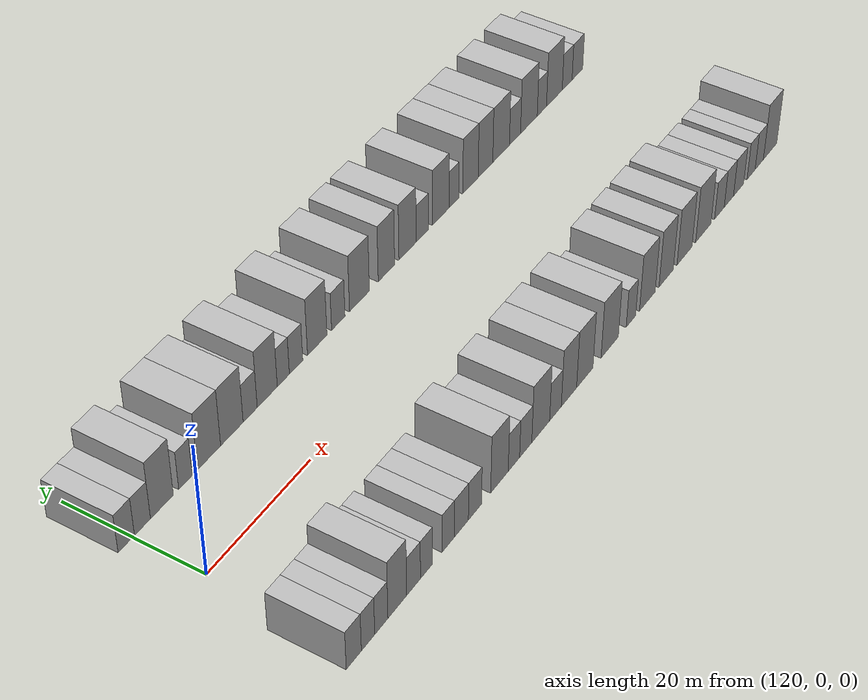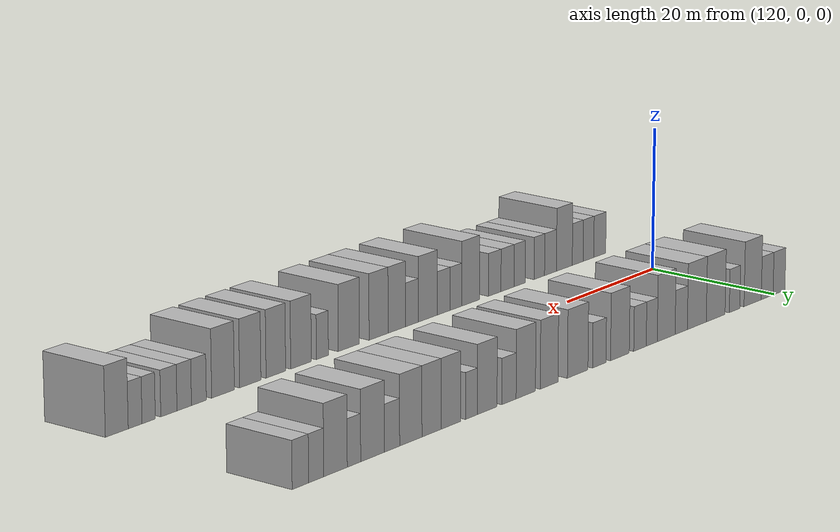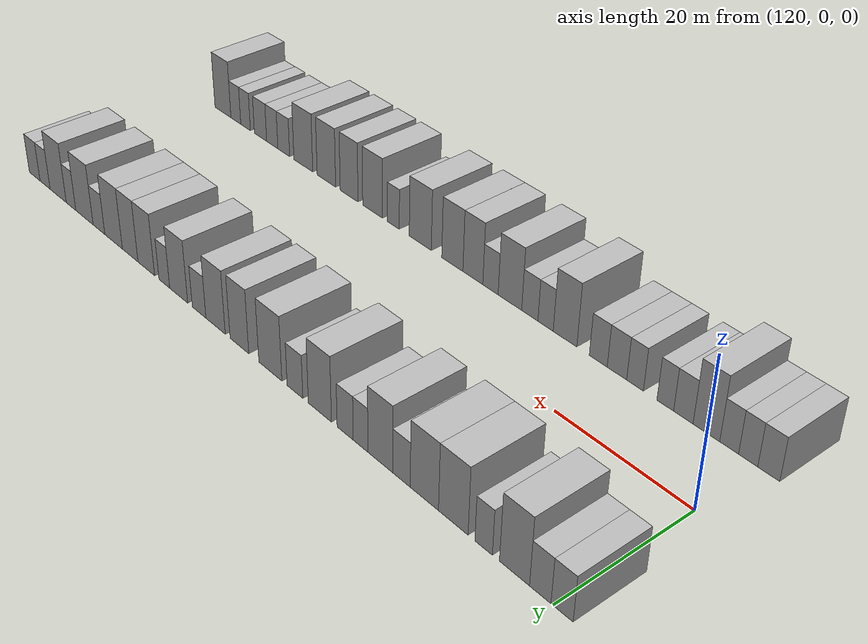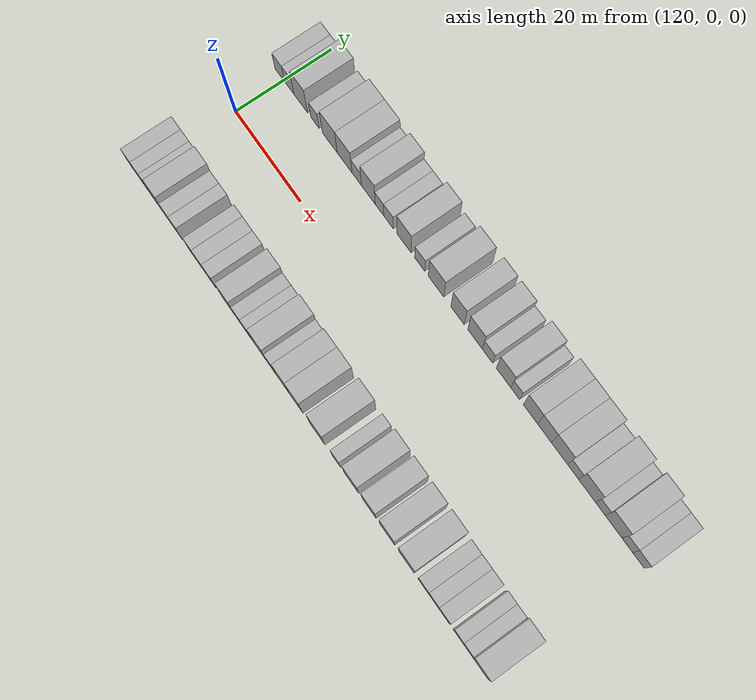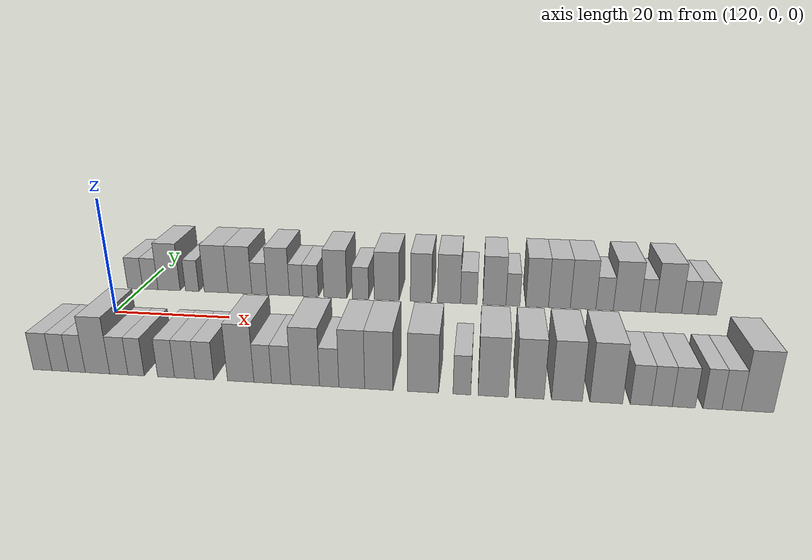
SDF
<sdf version="1.6">
 <world name="default">
  <model name="building_30">
   <static>1</static>
   <pose>118.8395 15.0000 0 0.000000 0.000000 1.570796</pose>
   <link name="link">
    <pose>0 0 3.00 0 0 0</pose>
    <collision name="collision"><geometry><box><size>10.0000 2.9260 6.0000</size></box></geometry></collision>
    <visual name="visual">
     <cast_shadows>0</cast_shadows>
     <geometry><box><size>10.0000 2.9260 6.0000</size></box></geometry>
     <material>
      <script>
       <uri>model://HANNAS_wall/materials/scripts</uri>
       <uri>model://HANNAS_wall/materials/textures</uri>
       <name>vrc/HANNAS_wall</name>
      </script>
     </material>
    </visual>
   </link>
  </model>
  <model name="building_31">
   <static>1</static>
   <pose>121.7471 15.0000 0 0.000000 0.000000 1.570796</pose>
   <link name="link">
    <pose>0 0 3.00 0 0 0</pose>
    <collision name="collision"><geometry><box><size>10.0000 2.8892 6.0000</size></box></geometry></collision>
    <visual name="visual">
     <cast_shadows>0</cast_shadows>
     <geometry><box><size>10.0000 2.8892 6.0000</size></box></geometry>
     <material>
      <script>
       <uri>model://HANNAS_wall/materials/scripts</uri>
       <uri>model://HANNAS_wall/materials/textures</uri>
       <name>vrc/HANNAS_wall</name>
      </script>
     </material>
    </visual>
   </link>
  </model>
  <model name="building_32">
   <static>1</static>
   <pose>125.2870 15.0000 0 0.000000 0.000000 1.570796</pose>
   <link name="link">
    <pose>0 0 4.50 0 0 0</pose>
    <collision name="collision"><geometry><box><size>10.0000 4.1906 9.0000</size></box></geometry></collision>
    <visual name="visual">
     <cast_shadows>0</cast_shadows>
     <geometry><box><size>10.0000 4.1906 9.0000</size></box></geometry>
     <material>
      <script>
       <uri>model://HANNAS_wall/materials/scripts</uri>
       <uri>model://HANNAS_wall/materials/textures</uri>
       <name>vrc/HANNAS_wall</name>
      </script>
     </material>
    </visual>
   </link>
  </model>
  <model name="building_33">
   <static>1</static>
   <pose>129.6487 15.0000 0 0.000000 0.000000 1.570796</pose>
   <link name="link">
    <pose>0 0 3.00 0 0 0</pose>
    <collision name="collision"><geometry><box><size>10.0000 2.5326 6.0000</size></box></geometry></collision>
    <visual name="visual">
     <cast_shadows>0</cast_shadows>
     <geometry><box><size>10.0000 2.5326 6.0000</size></box></geometry>
     <material>
      <script>
       <uri>model://HANNAS_wall/materials/scripts</uri>
       <uri>model://HANNAS_wall/materials/textures</uri>
       <name>vrc/HANNAS_wall</name>
      </script>
     </material>
    </visual>
   </link>
  </model>
  <model name="building_34">
   <static>1</static>
   <pose>134.1399 15.0000 0 0.000000 0.000000 1.570796</pose>
   <link name="link">
    <pose>0 0 4.50 0 0 0</pose>
    <collision name="collision"><geometry><box><size>10.0000 4.4499 9.0000</size></box></geometry></collision>
    <visual name="visual">
     <cast_shadows>0</cast_shadows>
     <geometry><box><size>10.0000 4.4499 9.0000</size></box></geometry>
     <material>
      <script>
       <uri>model://HANNAS_wall/materials/scripts</uri>
       <uri>model://HANNAS_wall/materials/textures</uri>
       <name>vrc/HANNAS_wall</name>
      </script>
     </material>
    </visual>
   </link>
  </model>
  <model name="building_35">
   <static>1</static>
   <pose>138.5769 15.0000 0 0.000000 0.000000 1.570796</pose>
   <link name="link">
    <pose>0 0 4.50 0 0 0</pose>
    <collision name="collision"><geometry><box><size>10.0000 4.4240 9.0000</size></box></geometry></collision>
    <visual name="visual">
     <cast_shadows>0</cast_shadows>
     <geometry><box><size>10.0000 4.4240 9.0000</size></box></geometry>
     <material>
      <script>
       <uri>model://HANNAS_wall/materials/scripts</uri>
       <uri>model://HANNAS_wall/materials/textures</uri>
       <name>vrc/HANNAS_wall</name>
      </script>
     </material>
    </visual>
   </link>
  </model>
  <model name="building_36">
   <static>1</static>
   <pose>142.1965 15.0000 0 0.000000 0.000000 1.570796</pose>
   <link name="link">
    <pose>0 0 3.00 0 0 0</pose>
    <collision name="collision"><geometry><box><size>10.0000 2.8153 6.0000</size></box></geometry></collision>
    <visual name="visual">
     <cast_shadows>0</cast_shadows>
     <geometry><box><size>10.0000 2.8153 6.0000</size></box></geometry>
     <material>
      <script>
       <uri>model://HANNAS_wall/materials/scripts</uri>
       <uri>model://HANNAS_wall/materials/textures</uri>
       <name>vrc/HANNAS_wall</name>
      </script>
     </material>
    </visual>
   </link>
  </model>
  <model name="building_37">
   <static>1</static>
   <pose>145.6440 15.0000 0 0.000000 0.000000 1.570796</pose>
   <link name="link">
    <pose>0 0 4.50 0 0 0</pose>
    <collision name="collision"><geometry><box><size>10.0000 4.0796 9.0000</size></box></geometry></collision>
    <visual name="visual">
     <cast_shadows>0</cast_shadows>
     <geometry><box><size>10.0000 4.0796 9.0000</size></box></geometry>
     <material>
      <script>
       <uri>model://HANNAS_wall/materials/scripts</uri>
       <uri>model://HANNAS_wall/materials/textures</uri>
       <name>vrc/HANNAS_wall</name>
      </script>
     </material>
    </visual>
   </link>
  </model>
  <model name="building_38">
   <static>1</static>
   <pose>148.9304 15.0000 0 0.000000 0.000000 1.570796</pose>
   <link name="link">
    <pose>0 0 3.00 0 0 0</pose>
    <collision name="collision"><geometry><box><size>10.0000 2.4932 6.0000</size></box></geometry></collision>
    <visual name="visual">
     <cast_shadows>0</cast_shadows>
     <geometry><box><size>10.0000 2.4932 6.0000</size></box></geometry>
     <material>
      <script>
       <uri>model://HANNAS_wall/materials/scripts</uri>
       <uri>model://HANNAS_wall/materials/textures</uri>
       <name>vrc/HANNAS_wall</name>
      </script>
     </material>
    </visual>
   </link>
  </model>
  <model name="building_39">
   <static>1</static>
   <pose>151.5765 15.0000 0 0.000000 0.000000 1.570796</pose>
   <link name="link">
    <pose>0 0 3.00 0 0 0</pose>
    <collision name="collision"><geometry><box><size>10.0000 2.7991 6.0000</size></box></geometry></collision>
    <visual name="visual">
     <cast_shadows>0</cast_shadows>
     <geometry><box><size>10.0000 2.7991 6.0000</size></box></geometry>
     <material>
      <script>
       <uri>model://HANNAS_wall/materials/scripts</uri>
       <uri>model://HANNAS_wall/materials/textures</uri>
       <name>vrc/HANNAS_wall</name>
      </script>
     </material>
    </visual>
   </link>
  </model>
  <model name="building_40">
   <static>1</static>
   <pose>156.0516 15.0000 0 0.000000 0.000000 1.570796</pose>
   <link name="link">
    <pose>0 0 4.50 0 0 0</pose>
    <collision name="collision"><geometry><box><size>10.0000 4.1510 9.0000</size></box></geometry></collision>
    <visual name="visual">
     <cast_shadows>0</cast_shadows>
     <geometry><box><size>10.0000 4.1510 9.0000</size></box></geometry>
     <material>
      <script>
       <uri>model://HANNAS_wall/materials/scripts</uri>
       <uri>model://HANNAS_wall/materials/textures</uri>
       <name>vrc/HANNAS_wall</name>
      </script>
     </material>
    </visual>
   </link>
  </model>
  <model name="building_41">
   <static>1</static>
   <pose>160.5889 15.0000 0 0.000000 0.000000 1.570796</pose>
   <link name="link">
    <pose>0 0 3.00 0 0 0</pose>
    <collision name="collision"><geometry><box><size>10.0000 2.9237 6.0000</size></box></geometry></collision>
    <visual name="visual">
     <cast_shadows>0</cast_shadows>
     <geometry><box><size>10.0000 2.9237 6.0000</size></box></geometry>
     <material>
      <script>
       <uri>model://HANNAS_wall/materials/scripts</uri>
       <uri>model://HANNAS_wall/materials/textures</uri>
       <name>vrc/HANNAS_wall</name>
      </script>
     </material>
    </visual>
   </link>
  </model>
  <model name="building_42">
   <static>1</static>
   <pose>165.2645 15.0000 0 0.000000 0.000000 1.570796</pose>
   <link name="link">
    <pose>0 0 4.50 0 0 0</pose>
    <collision name="collision"><geometry><box><size>10.0000 4.4274 9.0000</size></box></geometry></collision>
    <visual name="visual">
     <cast_shadows>0</cast_shadows>
     <geometry><box><size>10.0000 4.4274 9.0000</size></box></geometry>
     <material>
      <script>
       <uri>model://HANNAS_wall/materials/scripts</uri>
       <uri>model://HANNAS_wall/materials/textures</uri>
       <name>vrc/HANNAS_wall</name>
      </script>
     </material>
    </visual>
   </link>
  </model>
  <model name="building_43">
   <static>1</static>
   <pose>171.3550 15.0000 0 0.000000 0.000000 1.570796</pose>
   <link name="link">
    <pose>0 0 4.50 0 0 0</pose>
    <collision name="collision"><geometry><box><size>10.0000 3.7536 9.0000</size></box></geometry></collision>
    <visual name="visual">
     <cast_shadows>0</cast_shadows>
     <geometry><box><size>10.0000 3.7536 9.0000</size></box></geometry>
     <material>
      <script>
       <uri>model://HANNAS_wall/materials/scripts</uri>
       <uri>model://HANNAS_wall/materials/textures</uri>
       <name>vrc/HANNAS_wall</name>
      </script>
     </material>
    </visual>
   </link>
  </model>
  <model name="building_44">
   <static>1</static>
   <pose>176.2489 15.0000 0 0.000000 0.000000 1.570796</pose>
   <link name="link">
    <pose>0 0 4.50 0 0 0</pose>
    <collision name="collision"><geometry><box><size>10.0000 4.0343 9.0000</size></box></geometry></collision>
    <visual name="visual">
     <cast_shadows>0</cast_shadows>
     <geometry><box><size>10.0000 4.0343 9.0000</size></box></geometry>
     <material>
      <script>
       <uri>model://HANNAS_wall/materials/scripts</uri>
       <uri>model://HANNAS_wall/materials/textures</uri>
       <name>vrc/HANNAS_wall</name>
      </script>
     </material>
    </visual>
   </link>
  </model>
  <model name="building_45">
   <static>1</static>
   <pose>179.7240 15.0000 0 0.000000 0.000000 1.570796</pose>
   <link name="link">
    <pose>0 0 3.00 0 0 0</pose>
    <collision name="collision"><geometry><box><size>10.0000 2.9158 6.0000</size></box></geometry></collision>
    <visual name="visual">
     <cast_shadows>0</cast_shadows>
     <geometry><box><size>10.0000 2.9158 6.0000</size></box></geometry>
     <material>
      <script>
       <uri>model://HANNAS_wall/materials/scripts</uri>
       <uri>model://HANNAS_wall/materials/textures</uri>
       <name>vrc/HANNAS_wall</name>
      </script>
     </material>
    </visual>
   </link>
  </model>
  <model name="building_46">
   <static>1</static>
   <pose>184.1755 15.0000 0 0.000000 0.000000 1.570796</pose>
   <link name="link">
    <pose>0 0 4.50 0 0 0</pose>
    <collision name="collision"><geometry><box><size>10.0000 3.9871 9.0000</size></box></geometry></collision>
    <visual name="visual">
     <cast_shadows>0</cast_shadows>
     <geometry><box><size>10.0000 3.9871 9.0000</size></box></geometry>
     <material>
      <script>
       <uri>model://HANNAS_wall/materials/scripts</uri>
       <uri>model://HANNAS_wall/materials/textures</uri>
       <name>vrc/HANNAS_wall</name>
      </script>
     </material>
    </visual>
   </link>
  </model>
  <model name="building_47">
   <static>1</static>
   <pose>187.3735 15.0000 0 0.000000 0.000000 1.570796</pose>
   <link name="link">
    <pose>0 0 3.00 0 0 0</pose>
    <collision name="collision"><geometry><box><size>10.0000 2.4090 6.0000</size></box></geometry></collision>
    <visual name="visual">
     <cast_shadows>0</cast_shadows>
     <geometry><box><size>10.0000 2.4090 6.0000</size></box></geometry>
     <material>
      <script>
       <uri>model://HANNAS_wall/materials/scripts</uri>
       <uri>model://HANNAS_wall/materials/textures</uri>
       <name>vrc/HANNAS_wall</name>
      </script>
     </material>
    </visual>
   </link>
  </model>
  <model name="building_48">
   <static>1</static>
   <pose>191.5131 15.0000 0 0.000000 0.000000 1.570796</pose>
   <link name="link">
    <pose>0 0 4.50 0 0 0</pose>
    <collision name="collision"><geometry><box><size>10.0000 3.8702 9.0000</size></box></geometry></collision>
    <visual name="visual">
     <cast_shadows>0</cast_shadows>
     <geometry><box><size>10.0000 3.8702 9.0000</size></box></geometry>
     <material>
      <script>
       <uri>model://HANNAS_wall/materials/scripts</uri>
       <uri>model://HANNAS_wall/materials/textures</uri>
       <name>vrc/HANNAS_wall</name>
      </script>
     </material>
    </visual>
   </link>
  </model>
  <model name="building_49">
   <static>1</static>
   <pose>195.3071 15.0000 0 0.000000 0.000000 1.570796</pose>
   <link name="link">
    <pose>0 0 4.50 0 0 0</pose>
    <collision name="collision"><geometry><box><size>10.0000 3.7177 9.0000</size></box></geometry></collision>
    <visual name="visual">
     <cast_shadows>0</cast_shadows>
     <geometry><box><size>10.0000 3.7177 9.0000</size></box></geometry>
     <material>
      <script>
       <uri>model://HANNAS_wall/materials/scripts</uri>
       <uri>model://HANNAS_wall/materials/textures</uri>
       <name>vrc/HANNAS_wall</name>
      </script>
     </material>
    </visual>
   </link>
  </model>
  <model name="building_50">
   <static>1</static>
   <pose>199.3210 15.0000 0 0.000000 0.000000 1.570796</pose>
   <link name="link">
    <pose>0 0 4.50 0 0 0</pose>
    <collision name="collision"><geometry><box><size>10.0000 4.3102 9.0000</size></box></geometry></collision>
    <visual name="visual">
     <cast_shadows>0</cast_shadows>
     <geometry><box><size>10.0000 4.3102 9.0000</size></box></geometry>
     <material>
      <script>
       <uri>model://HANNAS_wall/materials/scripts</uri>
       <uri>model://HANNAS_wall/materials/textures</uri>
       <name>vrc/HANNAS_wall</name>
      </script>
     </material>
    </visual>
   </link>
  </model>
  <model name="building_51">
   <static>1</static>
   <pose>202.9413 15.0000 0 0.000000 0.000000 1.570796</pose>
   <link name="link">
    <pose>0 0 3.00 0 0 0</pose>
    <collision name="collision"><geometry><box><size>10.0000 2.9304 6.0000</size></box></geometry></collision>
    <visual name="visual">
     <cast_shadows>0</cast_shadows>
     <geometry><box><size>10.0000 2.9304 6.0000</size></box></geometry>
     <material>
      <script>
       <uri>model://HANNAS_wall/materials/scripts</uri>
       <uri>model://HANNAS_wall/materials/textures</uri>
       <name>vrc/HANNAS_wall</name>
      </script>
     </material>
    </visual>
   </link>
  </model>
  <model name="building_52">
   <static>1</static>
   <pose>206.6378 15.0000 0 0.000000 0.000000 1.570796</pose>
   <link name="link">
    <pose>0 0 4.50 0 0 0</pose>
    <collision name="collision"><geometry><box><size>10.0000 4.4625 9.0000</size></box></geometry></collision>
    <visual name="visual">
     <cast_shadows>0</cast_shadows>
     <geometry><box><size>10.0000 4.4625 9.0000</size></box></geometry>
     <material>
      <script>
       <uri>model://HANNAS_wall/materials/scripts</uri>
       <uri>model://HANNAS_wall/materials/textures</uri>
       <name>vrc/HANNAS_wall</name>
      </script>
     </material>
    </visual>
   </link>
  </model>
  <model name="building_53">
   <static>1</static>
   <pose>210.1238 15.0000 0 0.000000 0.000000 1.570796</pose>
   <link name="link">
    <pose>0 0 3.00 0 0 0</pose>
    <collision name="collision"><geometry><box><size>10.0000 2.5096 6.0000</size></box></geometry></collision>
    <visual name="visual">
     <cast_shadows>0</cast_shadows>
     <geometry><box><size>10.0000 2.5096 6.0000</size></box></geometry>
     <material>
      <script>
       <uri>model://HANNAS_wall/materials/scripts</uri>
       <uri>model://HANNAS_wall/materials/textures</uri>
       <name>vrc/HANNAS_wall</name>
      </script>
     </material>
    </visual>
   </link>
  </model>
  <model name="building_54">
   <static>1</static>
   <pose>213.5482 15.0000 0 0.000000 0.000000 1.570796</pose>
   <link name="link">
    <pose>0 0 4.50 0 0 0</pose>
    <collision name="collision"><geometry><box><size>10.0000 4.3391 9.0000</size></box></geometry></collision>
    <visual name="visual">
     <cast_shadows>0</cast_shadows>
     <geometry><box><size>10.0000 4.3391 9.0000</size></box></geometry>
     <material>
      <script>
       <uri>model://HANNAS_wall/materials/scripts</uri>
       <uri>model://HANNAS_wall/materials/textures</uri>
       <name>vrc/HANNAS_wall</name>
      </script>
     </material>
    </visual>
   </link>
  </model>
  <model name="building_55">
   <static>1</static>
   <pose>217.0966 15.0000 0 0.000000 0.000000 1.570796</pose>
   <link name="link">
    <pose>0 0 3.00 0 0 0</pose>
    <collision name="collision"><geometry><box><size>10.0000 2.7576 6.0000</size></box></geometry></collision>
    <visual name="visual">
     <cast_shadows>0</cast_shadows>
     <geometry><box><size>10.0000 2.7576 6.0000</size></box></geometry>
     <material>
      <script>
       <uri>model://HANNAS_wall/materials/scripts</uri>
       <uri>model://HANNAS_wall/materials/textures</uri>
       <name>vrc/HANNAS_wall</name>
      </script>
     </material>
    </visual>
   </link>
  </model>
  <model name="building_56">
   <static>1</static>
   <pose>219.9685 15.0000 0 0.000000 0.000000 1.570796</pose>
   <link name="link">
    <pose>0 0 3.00 0 0 0</pose>
    <collision name="collision"><geometry><box><size>10.0000 2.9861 6.0000</size></box></geometry></collision>
    <visual name="visual">
     <cast_shadows>0</cast_shadows>
     <geometry><box><size>10.0000 2.9861 6.0000</size></box></geometry>
     <material>
      <script>
       <uri>model://HANNAS_wall/materials/scripts</uri>
       <uri>model://HANNAS_wall/materials/textures</uri>
       <name>vrc/HANNAS_wall</name>
      </script>
     </material>
    </visual>
   </link>
  </model>
  <model name="building_83">
   <static>1</static>
   <pose>118.6435 -15.0000 0 0.000000 0.000000 1.570796</pose>
   <link name="link">
    <pose>0 0 3.00 0 0 0</pose>
    <collision name="collision"><geometry><box><size>10.0000 2.8686 6.0000</size></box></geometry></collision>
    <visual name="visual">
     <cast_shadows>0</cast_shadows>
     <geometry><box><size>10.0000 2.8686 6.0000</size></box></geometry>
     <material>
      <script>
       <uri>model://HANNAS_wall/materials/scripts</uri>
       <uri>model://HANNAS_wall/materials/textures</uri>
       <name>vrc/HANNAS_wall</name>
      </script>
     </material>
    </visual>
   </link>
  </model>
  <model name="building_84">
   <static>1</static>
   <pose>121.3555 -15.0000 0 0.000000 0.000000 1.570796</pose>
   <link name="link">
    <pose>0 0 3.00 0 0 0</pose>
    <collision name="collision"><geometry><box><size>10.0000 2.5554 6.0000</size></box></geometry></collision>
    <visual name="visual">
     <cast_shadows>0</cast_shadows>
     <geometry><box><size>10.0000 2.5554 6.0000</size></box></geometry>
     <material>
      <script>
       <uri>model://HANNAS_wall/materials/scripts</uri>
       <uri>model://HANNAS_wall/materials/textures</uri>
       <name>vrc/HANNAS_wall</name>
      </script>
     </material>
    </visual>
   </link>
  </model>
  <model name="building_85">
   <static>1</static>
   <pose>123.9093 -15.0000 0 0.000000 0.000000 1.570796</pose>
   <link name="link">
    <pose>0 0 3.00 0 0 0</pose>
    <collision name="collision"><geometry><box><size>10.0000 2.5523 6.0000</size></box></geometry></collision>
    <visual name="visual">
     <cast_shadows>0</cast_shadows>
     <geometry><box><size>10.0000 2.5523 6.0000</size></box></geometry>
     <material>
      <script>
       <uri>model://HANNAS_wall/materials/scripts</uri>
       <uri>model://HANNAS_wall/materials/textures</uri>
       <name>vrc/HANNAS_wall</name>
      </script>
     </material>
    </visual>
   </link>
  </model>
  <model name="building_86">
   <static>1</static>
   <pose>127.0417 -15.0000 0 0.000000 0.000000 1.570796</pose>
   <link name="link">
    <pose>0 0 4.50 0 0 0</pose>
    <collision name="collision"><geometry><box><size>10.0000 3.7125 9.0000</size></box></geometry></collision>
    <visual name="visual">
     <cast_shadows>0</cast_shadows>
     <geometry><box><size>10.0000 3.7125 9.0000</size></box></geometry>
     <material>
      <script>
       <uri>model://HANNAS_wall/materials/scripts</uri>
       <uri>model://HANNAS_wall/materials/textures</uri>
       <name>vrc/HANNAS_wall</name>
      </script>
     </material>
    </visual>
   </link>
  </model>
  <model name="building_87">
   <static>1</static>
   <pose>130.2831 -15.0000 0 0.000000 0.000000 1.570796</pose>
   <link name="link">
    <pose>0 0 3.00 0 0 0</pose>
    <collision name="collision"><geometry><box><size>10.0000 2.7702 6.0000</size></box></geometry></collision>
    <visual name="visual">
     <cast_shadows>0</cast_shadows>
     <geometry><box><size>10.0000 2.7702 6.0000</size></box></geometry>
     <material>
      <script>
       <uri>model://HANNAS_wall/materials/scripts</uri>
       <uri>model://HANNAS_wall/materials/textures</uri>
       <name>vrc/HANNAS_wall</name>
      </script>
     </material>
    </visual>
   </link>
  </model>
  <model name="building_88">
   <static>1</static>
   <pose>132.8838 -15.0000 0 0.000000 0.000000 1.570796</pose>
   <link name="link">
    <pose>0 0 3.00 0 0 0</pose>
    <collision name="collision"><geometry><box><size>10.0000 2.4313 6.0000</size></box></geometry></collision>
    <visual name="visual">
     <cast_shadows>0</cast_shadows>
     <geometry><box><size>10.0000 2.4313 6.0000</size></box></geometry>
     <material>
      <script>
       <uri>model://HANNAS_wall/materials/scripts</uri>
       <uri>model://HANNAS_wall/materials/textures</uri>
       <name>vrc/HANNAS_wall</name>
      </script>
     </material>
    </visual>
   </link>
  </model>
  <model name="building_89">
   <static>1</static>
   <pose>137.3623 -15.0000 0 0.000000 0.000000 1.570796</pose>
   <link name="link">
    <pose>0 0 3.00 0 0 0</pose>
    <collision name="collision"><geometry><box><size>10.0000 2.5257 6.0000</size></box></geometry></collision>
    <visual name="visual">
     <cast_shadows>0</cast_shadows>
     <geometry><box><size>10.0000 2.5257 6.0000</size></box></geometry>
     <material>
      <script>
       <uri>model://HANNAS_wall/materials/scripts</uri>
       <uri>model://HANNAS_wall/materials/textures</uri>
       <name>vrc/HANNAS_wall</name>
      </script>
     </material>
    </visual>
   </link>
  </model>
  <model name="building_90">
   <static>1</static>
   <pose>140.1201 -15.0000 0 0.000000 0.000000 1.570796</pose>
   <link name="link">
    <pose>0 0 3.00 0 0 0</pose>
    <collision name="collision"><geometry><box><size>10.0000 2.9900 6.0000</size></box></geometry></collision>
    <visual name="visual">
     <cast_shadows>0</cast_shadows>
     <geometry><box><size>10.0000 2.9900 6.0000</size></box></geometry>
     <material>
      <script>
       <uri>model://HANNAS_wall/materials/scripts</uri>
       <uri>model://HANNAS_wall/materials/textures</uri>
       <name>vrc/HANNAS_wall</name>
      </script>
     </material>
    </visual>
   </link>
  </model>
  <model name="building_91">
   <static>1</static>
   <pose>143.0219 -15.0000 0 0.000000 0.000000 1.570796</pose>
   <link name="link">
    <pose>0 0 3.00 0 0 0</pose>
    <collision name="collision"><geometry><box><size>10.0000 2.8136 6.0000</size></box></geometry></collision>
    <visual name="visual">
     <cast_shadows>0</cast_shadows>
     <geometry><box><size>10.0000 2.8136 6.0000</size></box></geometry>
     <material>
      <script>
       <uri>model://HANNAS_wall/materials/scripts</uri>
       <uri>model://HANNAS_wall/materials/textures</uri>
       <name>vrc/HANNAS_wall</name>
      </script>
     </material>
    </visual>
   </link>
  </model>
  <model name="building_92">
   <static>1</static>
   <pose>148.3590 -15.0000 0 0.000000 0.000000 1.570796</pose>
   <link name="link">
    <pose>0 0 4.50 0 0 0</pose>
    <collision name="collision"><geometry><box><size>10.0000 3.8606 9.0000</size></box></geometry></collision>
    <visual name="visual">
     <cast_shadows>0</cast_shadows>
     <geometry><box><size>10.0000 3.8606 9.0000</size></box></geometry>
     <material>
      <script>
       <uri>model://HANNAS_wall/materials/scripts</uri>
       <uri>model://HANNAS_wall/materials/textures</uri>
       <name>vrc/HANNAS_wall</name>
      </script>
     </material>
    </visual>
   </link>
  </model>
  <model name="building_93">
   <static>1</static>
   <pose>151.5669 -15.0000 0 0.000000 0.000000 1.570796</pose>
   <link name="link">
    <pose>0 0 3.00 0 0 0</pose>
    <collision name="collision"><geometry><box><size>10.0000 2.5553 6.0000</size></box></geometry></collision>
    <visual name="visual">
     <cast_shadows>0</cast_shadows>
     <geometry><box><size>10.0000 2.5553 6.0000</size></box></geometry>
     <material>
      <script>
       <uri>model://HANNAS_wall/materials/scripts</uri>
       <uri>model://HANNAS_wall/materials/textures</uri>
       <name>vrc/HANNAS_wall</name>
      </script>
     </material>
    </visual>
   </link>
  </model>
  <model name="building_94">
   <static>1</static>
   <pose>154.2288 -15.0000 0 0.000000 0.000000 1.570796</pose>
   <link name="link">
    <pose>0 0 3.00 0 0 0</pose>
    <collision name="collision"><geometry><box><size>10.0000 2.7685 6.0000</size></box></geometry></collision>
    <visual name="visual">
     <cast_shadows>0</cast_shadows>
     <geometry><box><size>10.0000 2.7685 6.0000</size></box></geometry>
     <material>
      <script>
       <uri>model://HANNAS_wall/materials/scripts</uri>
       <uri>model://HANNAS_wall/materials/textures</uri>
       <name>vrc/HANNAS_wall</name>
      </script>
     </material>
    </visual>
   </link>
  </model>
  <model name="building_95">
   <static>1</static>
   <pose>157.6717 -15.0000 0 0.000000 0.000000 1.570796</pose>
   <link name="link">
    <pose>0 0 4.50 0 0 0</pose>
    <collision name="collision"><geometry><box><size>10.0000 4.1173 9.0000</size></box></geometry></collision>
    <visual name="visual">
     <cast_shadows>0</cast_shadows>
     <geometry><box><size>10.0000 4.1173 9.0000</size></box></geometry>
     <material>
      <script>
       <uri>model://HANNAS_wall/materials/scripts</uri>
       <uri>model://HANNAS_wall/materials/textures</uri>
       <name>vrc/HANNAS_wall</name>
      </script>
     </material>
    </visual>
   </link>
  </model>
  <model name="building_96">
   <static>1</static>
   <pose>161.1045 -15.0000 0 0.000000 0.000000 1.570796</pose>
   <link name="link">
    <pose>0 0 3.00 0 0 0</pose>
    <collision name="collision"><geometry><box><size>10.0000 2.7482 6.0000</size></box></geometry></collision>
    <visual name="visual">
     <cast_shadows>0</cast_shadows>
     <geometry><box><size>10.0000 2.7482 6.0000</size></box></geometry>
     <material>
      <script>
       <uri>model://HANNAS_wall/materials/scripts</uri>
       <uri>model://HANNAS_wall/materials/textures</uri>
       <name>vrc/HANNAS_wall</name>
      </script>
     </material>
    </visual>
   </link>
  </model>
  <model name="building_97">
   <static>1</static>
   <pose>164.3017 -15.0000 0 0.000000 0.000000 1.570796</pose>
   <link name="link">
    <pose>0 0 4.50 0 0 0</pose>
    <collision name="collision"><geometry><box><size>10.0000 3.6461 9.0000</size></box></geometry></collision>
    <visual name="visual">
     <cast_shadows>0</cast_shadows>
     <geometry><box><size>10.0000 3.6461 9.0000</size></box></geometry>
     <material>
      <script>
       <uri>model://HANNAS_wall/materials/scripts</uri>
       <uri>model://HANNAS_wall/materials/textures</uri>
       <name>vrc/HANNAS_wall</name>
      </script>
     </material>
    </visual>
   </link>
  </model>
  <model name="building_98">
   <static>1</static>
   <pose>168.1119 -15.0000 0 0.000000 0.000000 1.570796</pose>
   <link name="link">
    <pose>0 0 4.50 0 0 0</pose>
    <collision name="collision"><geometry><box><size>10.0000 3.9743 9.0000</size></box></geometry></collision>
    <visual name="visual">
     <cast_shadows>0</cast_shadows>
     <geometry><box><size>10.0000 3.9743 9.0000</size></box></geometry>
     <material>
      <script>
       <uri>model://HANNAS_wall/materials/scripts</uri>
       <uri>model://HANNAS_wall/materials/textures</uri>
       <name>vrc/HANNAS_wall</name>
      </script>
     </material>
    </visual>
   </link>
  </model>
  <model name="building_99">
   <static>1</static>
   <pose>174.2595 -15.0000 0 0.000000 0.000000 1.570796</pose>
   <link name="link">
    <pose>0 0 4.50 0 0 0</pose>
    <collision name="collision"><geometry><box><size>10.0000 4.3209 9.0000</size></box></geometry></collision>
    <visual name="visual">
     <cast_shadows>0</cast_shadows>
     <geometry><box><size>10.0000 4.3209 9.0000</size></box></geometry>
     <material>
      <script>
       <uri>model://HANNAS_wall/materials/scripts</uri>
       <uri>model://HANNAS_wall/materials/textures</uri>
       <name>vrc/HANNAS_wall</name>
      </script>
     </material>
    </visual>
   </link>
  </model>
  <model name="building_100">
   <static>1</static>
   <pose>179.6296 -15.0000 0 0.000000 0.000000 1.570796</pose>
   <link name="link">
    <pose>0 0 3.00 0 0 0</pose>
    <collision name="collision"><geometry><box><size>10.0000 2.4193 6.0000</size></box></geometry></collision>
    <visual name="visual">
     <cast_shadows>0</cast_shadows>
     <geometry><box><size>10.0000 2.4193 6.0000</size></box></geometry>
     <material>
      <script>
       <uri>model://HANNAS_wall/materials/scripts</uri>
       <uri>model://HANNAS_wall/materials/textures</uri>
       <name>vrc/HANNAS_wall</name>
      </script>
     </material>
    </visual>
   </link>
  </model>
  <model name="building_101">
   <static>1</static>
   <pose>183.8953 -15.0000 0 0.000000 0.000000 1.570796</pose>
   <link name="link">
    <pose>0 0 4.50 0 0 0</pose>
    <collision name="collision"><geometry><box><size>10.0000 4.1122 9.0000</size></box></geometry></collision>
    <visual name="visual">
     <cast_shadows>0</cast_shadows>
     <geometry><box><size>10.0000 4.1122 9.0000</size></box></geometry>
     <material>
      <script>
       <uri>model://HANNAS_wall/materials/scripts</uri>
       <uri>model://HANNAS_wall/materials/textures</uri>
       <name>vrc/HANNAS_wall</name>
      </script>
     </material>
    </visual>
   </link>
  </model>
  <model name="building_102">
   <static>1</static>
   <pose>188.8653 -15.0000 0 0.000000 0.000000 1.570796</pose>
   <link name="link">
    <pose>0 0 4.50 0 0 0</pose>
    <collision name="collision"><geometry><box><size>10.0000 3.8278 9.0000</size></box></geometry></collision>
    <visual name="visual">
     <cast_shadows>0</cast_shadows>
     <geometry><box><size>10.0000 3.8278 9.0000</size></box></geometry>
     <material>
      <script>
       <uri>model://HANNAS_wall/materials/scripts</uri>
       <uri>model://HANNAS_wall/materials/textures</uri>
       <name>vrc/HANNAS_wall</name>
      </script>
     </material>
    </visual>
   </link>
  </model>
  <model name="building_103">
   <static>1</static>
   <pose>193.8314 -15.0000 0 0.000000 0.000000 1.570796</pose>
   <link name="link">
    <pose>0 0 4.50 0 0 0</pose>
    <collision name="collision"><geometry><box><size>10.0000 4.1043 9.0000</size></box></geometry></collision>
    <visual name="visual">
     <cast_shadows>0</cast_shadows>
     <geometry><box><size>10.0000 4.1043 9.0000</size></box></geometry>
     <material>
      <script>
       <uri>model://HANNAS_wall/materials/scripts</uri>
       <uri>model://HANNAS_wall/materials/textures</uri>
       <name>vrc/HANNAS_wall</name>
      </script>
     </material>
    </visual>
   </link>
  </model>
  <model name="building_104">
   <static>1</static>
   <pose>199.0405 -15.0000 0 0.000000 0.000000 1.570796</pose>
   <link name="link">
    <pose>0 0 4.50 0 0 0</pose>
    <collision name="collision"><geometry><box><size>10.0000 4.3139 9.0000</size></box></geometry></collision>
    <visual name="visual">
     <cast_shadows>0</cast_shadows>
     <geometry><box><size>10.0000 4.3139 9.0000</size></box></geometry>
     <material>
      <script>
       <uri>model://HANNAS_wall/materials/scripts</uri>
       <uri>model://HANNAS_wall/materials/textures</uri>
       <name>vrc/HANNAS_wall</name>
      </script>
     </material>
    </visual>
   </link>
  </model>
  <model name="building_105">
   <static>1</static>
   <pose>203.5901 -15.0000 0 0.000000 0.000000 1.570796</pose>
   <link name="link">
    <pose>0 0 3.00 0 0 0</pose>
    <collision name="collision"><geometry><box><size>10.0000 2.7853 6.0000</size></box></geometry></collision>
    <visual name="visual">
     <cast_shadows>0</cast_shadows>
     <geometry><box><size>10.0000 2.7853 6.0000</size></box></geometry>
     <material>
      <script>
       <uri>model://HANNAS_wall/materials/scripts</uri>
       <uri>model://HANNAS_wall/materials/textures</uri>
       <name>vrc/HANNAS_wall</name>
      </script>
     </material>
    </visual>
   </link>
  </model>
  <model name="building_106">
   <static>1</static>
   <pose>206.3240 -15.0000 0 0.000000 0.000000 1.570796</pose>
   <link name="link">
    <pose>0 0 3.00 0 0 0</pose>
    <collision name="collision"><geometry><box><size>10.0000 2.6825 6.0000</size></box></geometry></collision>
    <visual name="visual">
     <cast_shadows>0</cast_shadows>
     <geometry><box><size>10.0000 2.6825 6.0000</size></box></geometry>
     <material>
      <script>
       <uri>model://HANNAS_wall/materials/scripts</uri>
       <uri>model://HANNAS_wall/materials/textures</uri>
       <name>vrc/HANNAS_wall</name>
      </script>
     </material>
    </visual>
   </link>
  </model>
  <model name="building_107">
   <static>1</static>
   <pose>209.1539 -15.0000 0 0.000000 0.000000 1.570796</pose>
   <link name="link">
    <pose>0 0 3.00 0 0 0</pose>
    <collision name="collision"><geometry><box><size>10.0000 2.9775 6.0000</size></box></geometry></collision>
    <visual name="visual">
     <cast_shadows>0</cast_shadows>
     <geometry><box><size>10.0000 2.9775 6.0000</size></box></geometry>
     <material>
      <script>
       <uri>model://HANNAS_wall/materials/scripts</uri>
       <uri>model://HANNAS_wall/materials/textures</uri>
       <name>vrc/HANNAS_wall</name>
      </script>
     </material>
    </visual>
   </link>
  </model>
  <model name="building_108">
   <static>1</static>
   <pose>212.8435 -15.0000 0 0.000000 0.000000 1.570796</pose>
   <link name="link">
    <pose>0 0 3.00 0 0 0</pose>
    <collision name="collision"><geometry><box><size>10.0000 2.4015 6.0000</size></box></geometry></collision>
    <visual name="visual">
     <cast_shadows>0</cast_shadows>
     <geometry><box><size>10.0000 2.4015 6.0000</size></box></geometry>
     <material>
      <script>
       <uri>model://HANNAS_wall/materials/scripts</uri>
       <uri>model://HANNAS_wall/materials/textures</uri>
       <name>vrc/HANNAS_wall</name>
      </script>
     </material>
    </visual>
   </link>
  </model>
  <model name="building_109">
   <static>1</static>
   <pose>215.2921 -15.0000 0 0.000000 0.000000 1.570796</pose>
   <link name="link">
    <pose>0 0 3.00 0 0 0</pose>
    <collision name="collision"><geometry><box><size>10.0000 2.4957 6.0000</size></box></geometry></collision>
    <visual name="visual">
     <cast_shadows>0</cast_shadows>
     <geometry><box><size>10.0000 2.4957 6.0000</size></box></geometry>
     <material>
      <script>
       <uri>model://HANNAS_wall/materials/scripts</uri>
       <uri>model://HANNAS_wall/materials/textures</uri>
       <name>vrc/HANNAS_wall</name>
      </script>
     </material>
    </visual>
   </link>
  </model>
  <model name="building_110">
   <static>1</static>
   <pose>218.5814 -15.0000 0 0.000000 0.000000 1.570796</pose>
   <link name="link">
    <pose>0 0 4.50 0 0 0</pose>
    <collision name="collision"><geometry><box><size>10.0000 4.0829 9.0000</size></box></geometry></collision>
    <visual name="visual">
     <cast_shadows>0</cast_shadows>
     <geometry><box><size>10.0000 4.0829 9.0000</size></box></geometry>
     <material>
      <script>
       <uri>model://HANNAS_wall/materials/scripts</uri>
       <uri>model://HANNAS_wall/materials/textures</uri>
       <name>vrc/HANNAS_wall</name>
      </script>
     </material>
    </visual>
   </link>
  </model>
 </world>
</sdf>
